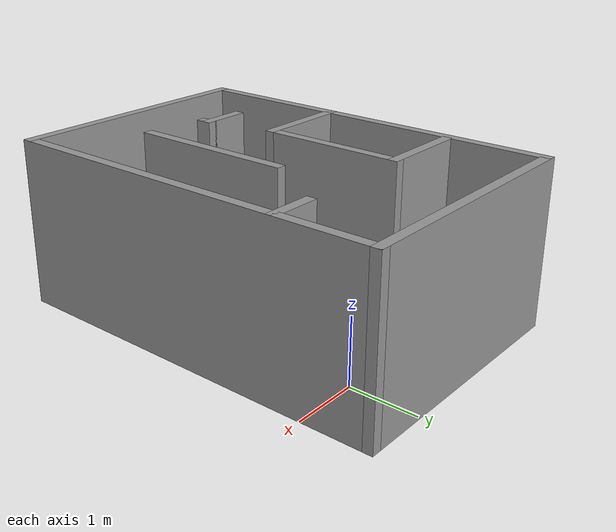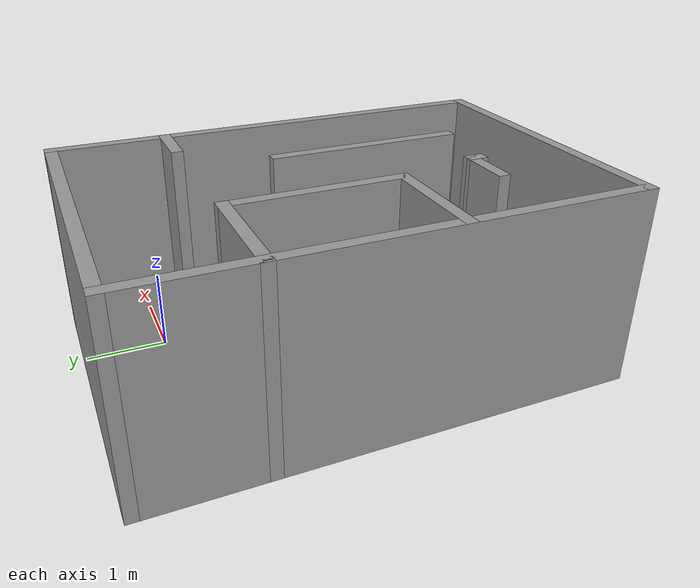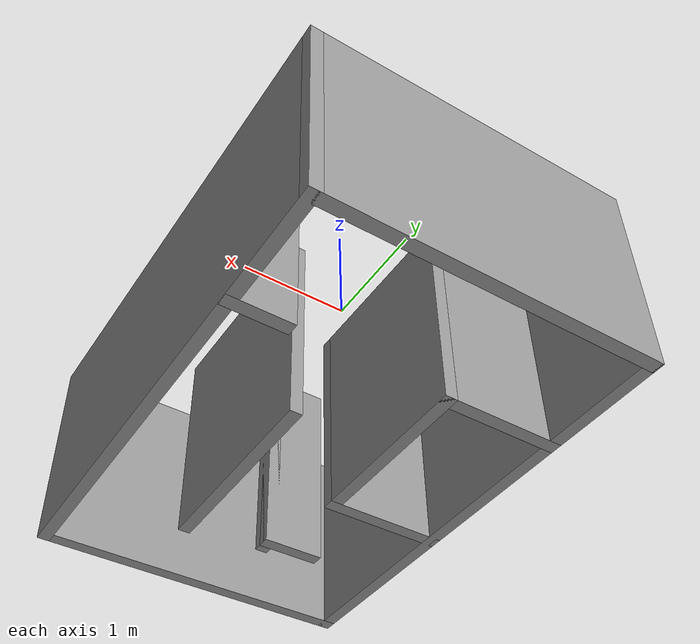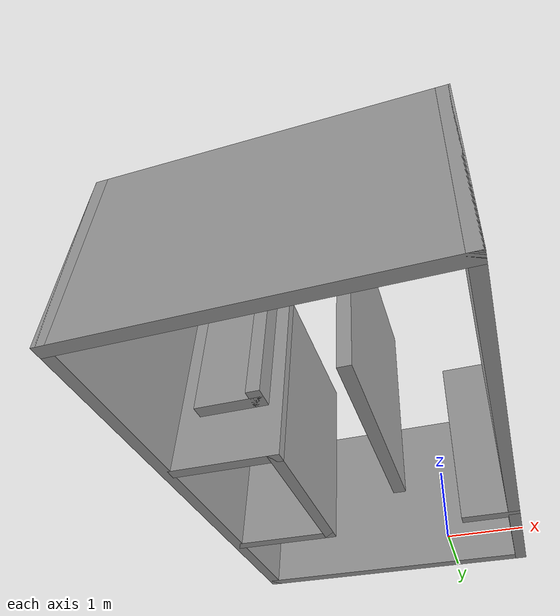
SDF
<?xml version='1.0'?>
<sdf version='1.6'>
  <model name='world3'>
    <pose frame=''>-1.00114 -1.95365 0 0 -0 0</pose>
    <link name='Wall_10'>
      <collision name='Wall_10_Collision'>
        <geometry>
          <box>
            <size>1.5 0.15 2.5</size>
          </box>
        </geometry>
        <pose frame=''>0 0 1.25 0 -0 0</pose>
      </collision>
      <visual name='Wall_10_Visual'>
        <pose frame=''>0 0 1.25 0 -0 0</pose>
        <geometry>
          <box>
            <size>1.5 0.15 2.5</size>
          </box>
        </geometry>
        <material>
          <script>
            <uri>file://media/materials/scripts/gazebo.material</uri>
            <name>Gazebo/Grey</name>
          </script>
          <ambient>1 1 1 1</ambient>
        </material>
        <meta>
          <layer>0</layer>
        </meta>
      </visual>
      <pose frame=''>-1.25 -0.644165 0 0 -0 3.14159</pose>
    </link>
    <link name='Wall_12'>
      <collision name='Wall_12_Collision'>
        <geometry>
          <box>
            <size>2.5 0.15 2.5</size>
          </box>
        </geometry>
        <pose frame=''>0 0 1.25 0 -0 0</pose>
      </collision>
      <visual name='Wall_12_Visual'>
        <pose frame=''>0 0 1.25 0 -0 0</pose>
        <geometry>
          <box>
            <size>2.5 0.15 2.5</size>
          </box>
        </geometry>
        <material>
          <script>
            <uri>file://media/materials/scripts/gazebo.material</uri>
            <name>Gazebo/Grey</name>
          </script>
          <ambient>1 1 1 1</ambient>
        </material>
        <meta>
          <layer>0</layer>
        </meta>
      </visual>
      <pose frame=''>0.611059 -0.733589 0 0 -0 -1.5708</pose>
    </link>
    <link name='Wall_15'>
      <collision name='Wall_15_Collision'>
        <geometry>
          <box>
            <size>0.75 0.15 2.5</size>
          </box>
        </geometry>
        <pose frame=''>0 0 1.25 0 -0 0</pose>
      </collision>
      <visual name='Wall_15_Visual'>
        <pose frame=''>0 0 1.25 0 -0 0</pose>
        <geometry>
          <box>
            <size>0.75 0.15 2.5</size>
          </box>
        </geometry>
        <material>
          <script>
            <uri>file://media/materials/scripts/gazebo.material</uri>
            <name>Gazebo/Grey</name>
          </script>
          <ambient>1 1 1 1</ambient>
        </material>
        <meta>
          <layer>0</layer>
        </meta>
      </visual>
      <pose frame=''>-0.645557 -1.69238 0 0 -0 0</pose>
    </link>
    <link name='Wall_16'>
      <collision name='Wall_16_Collision'>
        <geometry>
          <box>
            <size>0.25 0.15 2.5</size>
          </box>
        </geometry>
        <pose frame=''>0 0 1.25 0 -0 0</pose>
      </collision>
      <visual name='Wall_16_Visual'>
        <pose frame=''>0 0 1.25 0 -0 0</pose>
        <geometry>
          <box>
            <size>0.25 0.15 2.5</size>
          </box>
        </geometry>
        <material>
          <script>
            <uri>file://media/materials/scripts/gazebo.material</uri>
            <name>Gazebo/Grey</name>
          </script>
          <ambient>1 1 1 1</ambient>
        </material>
        <meta>
          <layer>0</layer>
        </meta>
      </visual>
      <pose frame=''>-0.345557 -1.74238 0 0 -0 -1.5708</pose>
    </link>
    <link name='Wall_18'>
      <collision name='Wall_18_Collision'>
        <geometry>
          <box>
            <size>0.75 0.15 2.5</size>
          </box>
        </geometry>
        <pose frame=''>0 0 1.25 0 -0 0</pose>
      </collision>
      <visual name='Wall_18_Visual'>
        <pose frame=''>0 0 1.25 0 -0 0</pose>
        <geometry>
          <box>
            <size>0.75 0.15 2.5</size>
          </box>
        </geometry>
        <material>
          <script>
            <uri>file://media/materials/scripts/gazebo.material</uri>
            <name>Gazebo/Grey</name>
          </script>
          <ambient>1 1 1 1</ambient>
        </material>
        <meta>
          <layer>0</layer>
        </meta>
      </visual>
      <pose frame=''>1.62281 1.50831 0 0 -0 3.14159</pose>
    </link>
    <link name='Wall_3'>
      <collision name='Wall_3_Collision'>
        <geometry>
          <box>
            <size>6 0.15 2.5</size>
          </box>
        </geometry>
        <pose frame=''>0 0 1.25 0 -0 0</pose>
      </collision>
      <visual name='Wall_3_Visual'>
        <pose frame=''>0 0 1.25 0 -0 0</pose>
        <geometry>
          <box>
            <size>6 0.15 2.5</size>
          </box>
        </geometry>
        <material>
          <script>
            <uri>file://media/materials/scripts/gazebo.material</uri>
            <name>Gazebo/Grey</name>
          </script>
          <ambient>1 1 1 1</ambient>
        </material>
        <meta>
          <layer>0</layer>
        </meta>
      </visual>
      <pose frame=''>-1.925 0 0 0 -0 -1.5708</pose>
    </link>
    <link name='Wall_4'>
      <collision name='Wall_4_Collision'>
        <geometry>
          <box>
            <size>4 0.15 2.5</size>
          </box>
        </geometry>
        <pose frame=''>0 0 1.25 0 -0 0</pose>
      </collision>
      <visual name='Wall_4_Visual'>
        <pose frame=''>0 0 1.25 0 -0 0</pose>
        <geometry>
          <box>
            <size>4 0.15 2.5</size>
          </box>
        </geometry>
        <material>
          <script>
            <uri>file://media/materials/scripts/gazebo.material</uri>
            <name>Gazebo/Grey</name>
          </script>
          <ambient>1 1 1 1</ambient>
        </material>
        <meta>
          <layer>0</layer>
        </meta>
      </visual>
      <pose frame=''>-0 -2.925 0 0 -0 0</pose>
    </link>
    <link name='Wall_5'>
      <collision name='Wall_5_Collision'>
        <geometry>
          <box>
            <size>6 0.15 2.5</size>
          </box>
        </geometry>
        <pose frame=''>0 0 1.25 0 -0 0</pose>
      </collision>
      <visual name='Wall_5_Visual'>
        <pose frame=''>0 0 1.25 0 -0 0</pose>
        <geometry>
          <box>
            <size>6 0.15 2.5</size>
          </box>
        </geometry>
        <material>
          <script>
            <uri>file://media/materials/scripts/gazebo.material</uri>
            <name>Gazebo/Grey</name>
          </script>
          <ambient>1 1 1 1</ambient>
        </material>
        <meta>
          <layer>0</layer>
        </meta>
      </visual>
      <pose frame=''>1.925 0 0 0 -0 1.5708</pose>
    </link>
    <link name='Wall_6'>
      <collision name='Wall_6_Collision'>
        <geometry>
          <box>
            <size>4 0.15 2.5</size>
          </box>
        </geometry>
        <pose frame=''>0 0 1.25 0 -0 0</pose>
      </collision>
      <visual name='Wall_6_Visual'>
        <pose frame=''>0 0 1.25 0 -0 0</pose>
        <geometry>
          <box>
            <size>4 0.15 2.5</size>
          </box>
        </geometry>
        <material>
          <script>
            <uri>file://media/materials/scripts/gazebo.material</uri>
            <name>Gazebo/Grey</name>
          </script>
          <ambient>1 1 1 1</ambient>
        </material>
        <meta>
          <layer>0</layer>
        </meta>
      </visual>
      <pose frame=''>-0 2.925 0 0 -0 3.14159</pose>
    </link>
    <link name='Wall_8'>
      <collision name='Wall_8_Collision'>
        <geometry>
          <box>
            <size>1.5 0.15 2.5</size>
          </box>
        </geometry>
        <pose frame=''>0 0 1.25 0 -0 0</pose>
      </collision>
      <visual name='Wall_8_Visual'>
        <pose frame=''>0 0 1.25 0 -0 0</pose>
        <geometry>
          <box>
            <size>1.5 0.15 2.5</size>
          </box>
        </geometry>
        <material>
          <script>
            <uri>file://media/materials/scripts/gazebo.material</uri>
            <name>Gazebo/Grey</name>
          </script>
          <ambient>1 1 1 1</ambient>
        </material>
        <meta>
          <layer>0</layer>
        </meta>
      </visual>
      <pose frame=''>-1.25 1.45583 0 0 -0 0</pose>
    </link>
    <link name='Wall_9'>
      <collision name='Wall_9_Collision'>
        <geometry>
          <box>
            <size>2.25 0.15 2.5</size>
          </box>
        </geometry>
        <pose frame=''>0 0 1.25 0 -0 0</pose>
      </collision>
      <visual name='Wall_9_Visual'>
        <pose frame=''>0 0 1.25 0 -0 0</pose>
        <geometry>
          <box>
            <size>2.25 0.15 2.5</size>
          </box>
        </geometry>
        <material>
          <script>
            <uri>file://media/materials/scripts/gazebo.material</uri>
            <name>Gazebo/Grey</name>
          </script>
          <ambient>1 1 1 1</ambient>
        </material>
        <meta>
          <layer>0</layer>
        </meta>
      </visual>
      <pose frame=''>-0.575 0.405835 0 0 -0 -1.5708</pose>
    </link>
    <static>1</static>
  </model>
</sdf>
